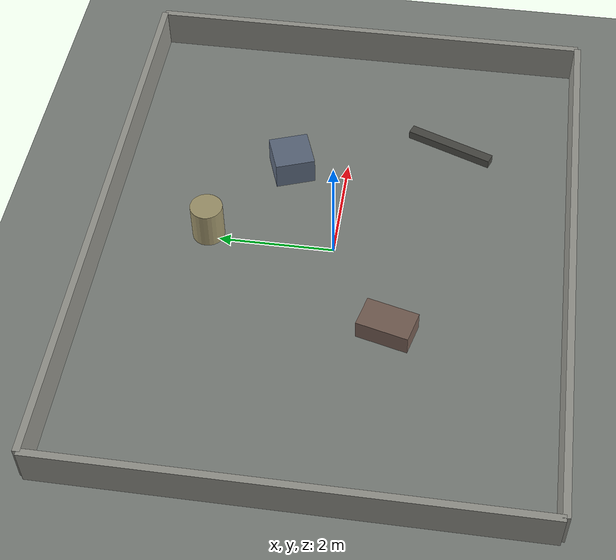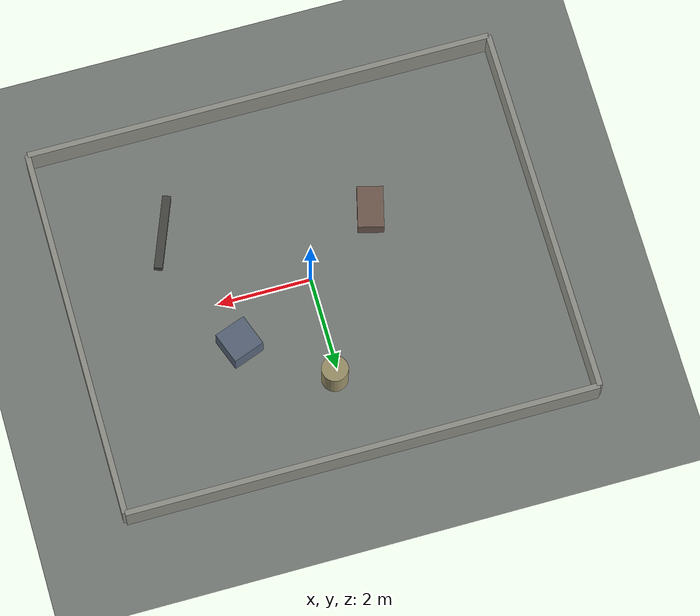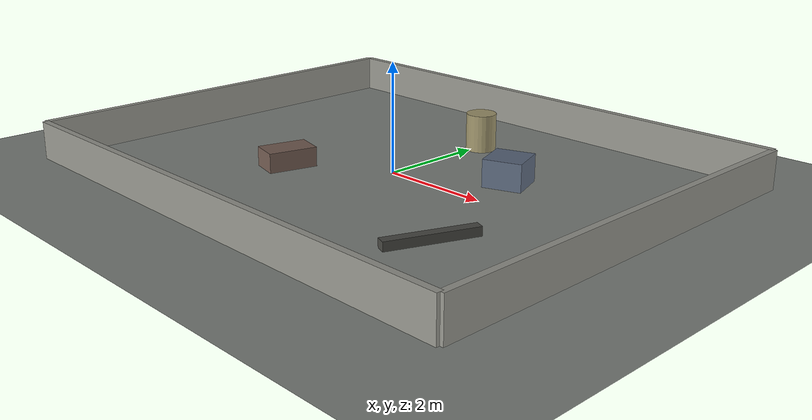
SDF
<?xml version="1.0"?>
<sdf version="1.9">
  <world name="brover_e5_test_yard">
    <plugin filename="gz-sim-physics-system" name="gz::sim::systems::Physics"/>
    <plugin filename="gz-sim-user-commands-system" name="gz::sim::systems::UserCommands"/>
    <plugin filename="gz-sim-scene-broadcaster-system" name="gz::sim::systems::SceneBroadcaster"/>
    <plugin filename="gz-sim-sensors-system" name="gz::sim::systems::Sensors">
      <render_engine>ogre2</render_engine>
    </plugin>

    <gravity>0 0 -9.81</gravity>
    <atmosphere type="adiabatic"/>
    <scene>
      <ambient>0.32 0.32 0.32 1</ambient>
      <background>0.66 0.69 0.72 1</background>
      <shadows>true</shadows>
    </scene>

    <light name="sun" type="directional">
      <cast_shadows>true</cast_shadows>
      <pose>0 0 10 0 0 0</pose>
      <diffuse>0.95 0.95 0.90 1</diffuse>
      <specular>0.12 0.12 0.12 1</specular>
      <direction>-0.45 0.25 -0.85</direction>
    </light>

    <model name="ground_plane">
      <static>true</static>
      <link name="link">
        <collision name="collision">
          <geometry>
            <plane>
              <normal>0 0 1</normal>
              <size>14 10</size>
            </plane>
          </geometry>
          <surface>
            <friction>
              <ode>
                <mu>1.0</mu>
                <mu2>1.0</mu2>
              </ode>
            </friction>
          </surface>
        </collision>
        <visual name="visual">
          <geometry>
            <plane>
              <normal>0 0 1</normal>
              <size>14 10</size>
            </plane>
          </geometry>
          <material>
            <ambient>0.48 0.50 0.48 1</ambient>
            <diffuse>0.48 0.50 0.48 1</diffuse>
            <specular>0.02 0.02 0.02 1</specular>
          </material>
        </visual>
      </link>
    </model>

    <model name="north_wall">
      <static>true</static>
      <pose>0 4.0 0.35 0 0 0</pose>
      <link name="link">
        <collision name="collision">
          <geometry><box><size>10 0.12 0.70</size></box></geometry>
        </collision>
        <visual name="visual">
          <geometry><box><size>10 0.12 0.70</size></box></geometry>
          <material><diffuse>0.58 0.58 0.55 1</diffuse></material>
        </visual>
      </link>
    </model>

    <model name="south_wall">
      <static>true</static>
      <pose>0 -4.0 0.35 0 0 0</pose>
      <link name="link">
        <collision name="collision">
          <geometry><box><size>10 0.12 0.70</size></box></geometry>
        </collision>
        <visual name="visual">
          <geometry><box><size>10 0.12 0.70</size></box></geometry>
          <material><diffuse>0.58 0.58 0.55 1</diffuse></material>
        </visual>
      </link>
    </model>

    <model name="west_wall">
      <static>true</static>
      <pose>-5.0 0 0.35 0 0 0</pose>
      <link name="link">
        <collision name="collision">
          <geometry><box><size>0.12 8 0.70</size></box></geometry>
        </collision>
        <visual name="visual">
          <geometry><box><size>0.12 8 0.70</size></box></geometry>
          <material><diffuse>0.58 0.58 0.55 1</diffuse></material>
        </visual>
      </link>
    </model>

    <model name="east_wall">
      <static>true</static>
      <pose>5.0 0 0.35 0 0 0</pose>
      <link name="link">
        <collision name="collision">
          <geometry><box><size>0.12 8 0.70</size></box></geometry>
        </collision>
        <visual name="visual">
          <geometry><box><size>0.12 8 0.70</size></box></geometry>
          <material><diffuse>0.58 0.58 0.55 1</diffuse></material>
        </visual>
      </link>
    </model>

    <model name="box_obstacle_1">
      <static>true</static>
      <pose>1.8 1.0 0.25 0 0 0.35</pose>
      <link name="link">
        <collision name="collision">
          <geometry><box><size>0.7 0.7 0.5</size></box></geometry>
        </collision>
        <visual name="visual">
          <geometry><box><size>0.7 0.7 0.5</size></box></geometry>
          <material><diffuse>0.35 0.40 0.48 1</diffuse></material>
        </visual>
      </link>
    </model>

    <model name="box_obstacle_2">
      <static>true</static>
      <pose>-1.6 -1.1 0.18 0 0 -0.25</pose>
      <link name="link">
        <collision name="collision">
          <geometry><box><size>0.55 0.9 0.36</size></box></geometry>
        </collision>
        <visual name="visual">
          <geometry><box><size>0.55 0.9 0.36</size></box></geometry>
          <material><diffuse>0.45 0.36 0.32 1</diffuse></material>
        </visual>
      </link>
    </model>

    <model name="cylinder_obstacle">
      <static>true</static>
      <pose>0.1 2.2 0.35 0 0 0</pose>
      <link name="link">
        <collision name="collision">
          <geometry><cylinder><radius>0.28</radius><length>0.70</length></cylinder></geometry>
        </collision>
        <visual name="visual">
          <geometry><cylinder><radius>0.28</radius><length>0.70</length></cylinder></geometry>
          <material><diffuse>0.62 0.58 0.42 1</diffuse></material>
        </visual>
      </link>
    </model>

    <model name="low_barrier">
      <static>true</static>
      <pose>2.7 -1.8 0.08 0 0 1.2</pose>
      <link name="link">
        <collision name="collision">
          <geometry><box><size>1.6 0.18 0.16</size></box></geometry>
        </collision>
        <visual name="visual">
          <geometry><box><size>1.6 0.18 0.16</size></box></geometry>
          <material><diffuse>0.28 0.28 0.26 1</diffuse></material>
        </visual>
      </link>
    </model>
  </world>
</sdf>
